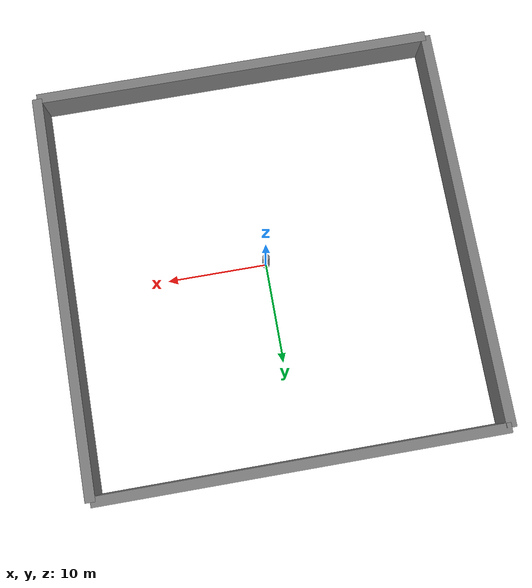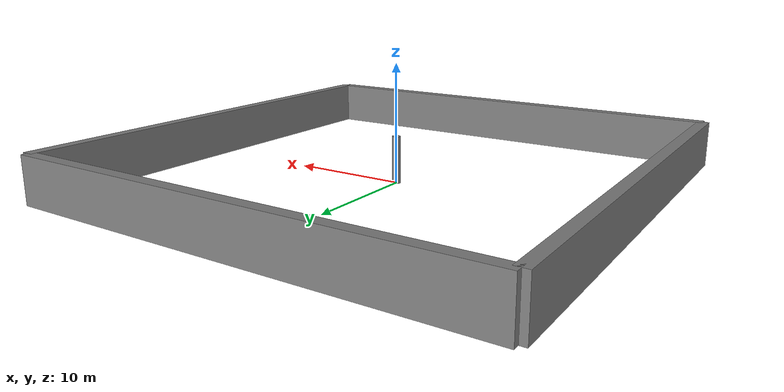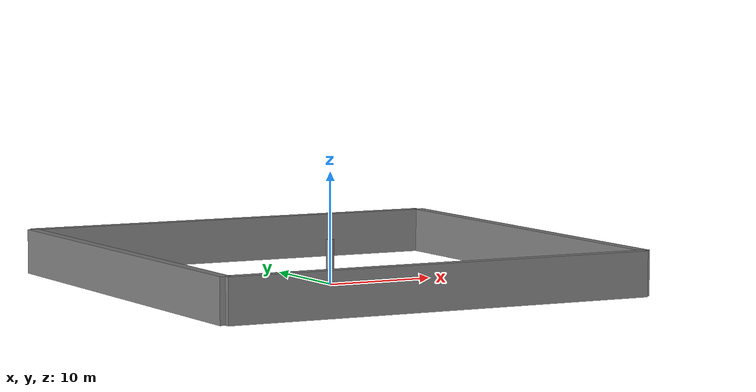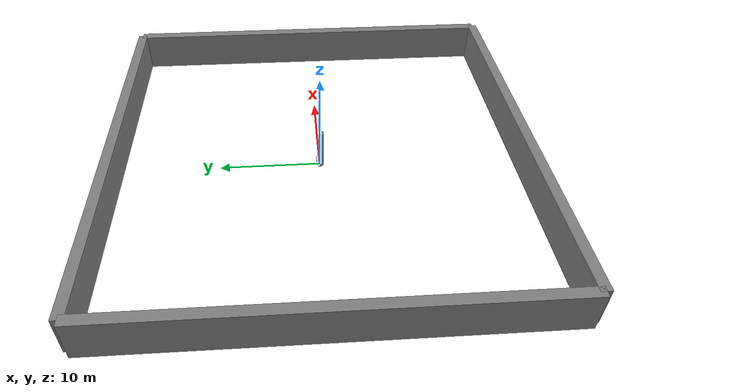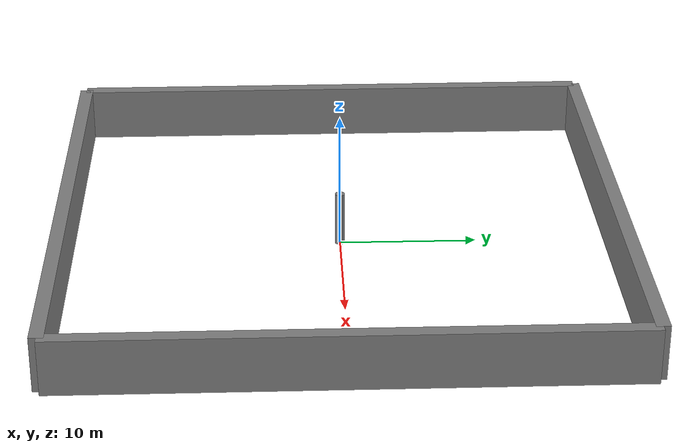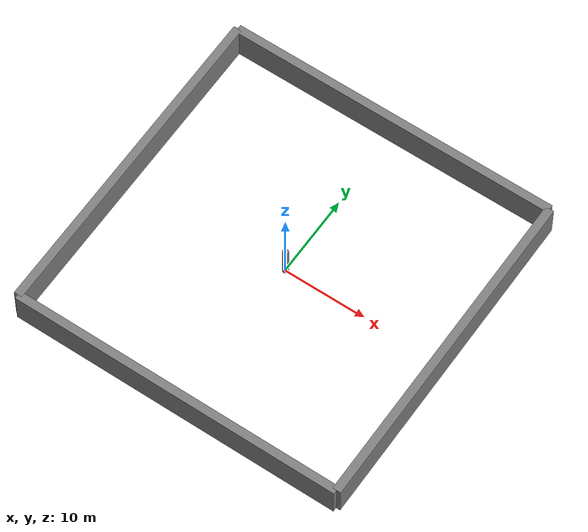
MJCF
<mujoco model="avoidance_arena">
  <worldbody>
    <!-- 4 walls -->
    <geom name="wall_east" type="box" size="0.5 20.0 2.0" pos="20.0 0.0 2.0"/>
    <geom name="wall_west" type="box" size="0.5 20.0 2.0" pos="-20.0 0.0 2.0"/>
    <geom name="wall_north" type="box" size="20.0 0.5 2.0" pos="0.0 20.0 2.0"/>
    <geom name="wall_south" type="box" size="20.0 0.5 2.0" pos="0.0 -20.0 2.0"/>
    <!-- 40 dynamic obstacles -->
    <geom name="obs_0" type="cylinder" size="0.35 2.0" pos="0.0 0.0 2.0"/>
    <geom name="obs_1" type="cylinder" size="0.35 2.0" pos="0.0 0.0 2.0"/>
    <geom name="obs_2" type="cylinder" size="0.35 2.0" pos="0.0 0.0 2.0"/>
    <geom name="obs_3" type="cylinder" size="0.35 2.0" pos="0.0 0.0 2.0"/>
    <geom name="obs_4" type="cylinder" size="0.35 2.0" pos="0.0 0.0 2.0"/>
    <geom name="obs_5" type="cylinder" size="0.35 2.0" pos="0.0 0.0 2.0"/>
    <geom name="obs_6" type="cylinder" size="0.35 2.0" pos="0.0 0.0 2.0"/>
    <geom name="obs_7" type="cylinder" size="0.35 2.0" pos="0.0 0.0 2.0"/>
    <geom name="obs_8" type="cylinder" size="0.35 2.0" pos="0.0 0.0 2.0"/>
    <geom name="obs_9" type="cylinder" size="0.35 2.0" pos="0.0 0.0 2.0"/>
    <geom name="obs_10" type="cylinder" size="0.35 2.0" pos="0.0 0.0 2.0"/>
    <geom name="obs_11" type="cylinder" size="0.35 2.0" pos="0.0 0.0 2.0"/>
    <geom name="obs_12" type="cylinder" size="0.35 2.0" pos="0.0 0.0 2.0"/>
    <geom name="obs_13" type="cylinder" size="0.35 2.0" pos="0.0 0.0 2.0"/>
    <geom name="obs_14" type="cylinder" size="0.35 2.0" pos="0.0 0.0 2.0"/>
    <geom name="obs_15" type="cylinder" size="0.35 2.0" pos="0.0 0.0 2.0"/>
    <geom name="obs_16" type="cylinder" size="0.35 2.0" pos="0.0 0.0 2.0"/>
    <geom name="obs_17" type="cylinder" size="0.35 2.0" pos="0.0 0.0 2.0"/>
    <geom name="obs_18" type="cylinder" size="0.35 2.0" pos="0.0 0.0 2.0"/>
    <geom name="obs_19" type="cylinder" size="0.35 2.0" pos="0.0 0.0 2.0"/>
    <geom name="obs_20" type="cylinder" size="0.35 2.0" pos="0.0 0.0 2.0"/>
    <geom name="obs_21" type="cylinder" size="0.35 2.0" pos="0.0 0.0 2.0"/>
    <geom name="obs_22" type="cylinder" size="0.35 2.0" pos="0.0 0.0 2.0"/>
    <geom name="obs_23" type="cylinder" size="0.35 2.0" pos="0.0 0.0 2.0"/>
    <geom name="obs_24" type="cylinder" size="0.35 2.0" pos="0.0 0.0 2.0"/>
    <geom name="obs_25" type="cylinder" size="0.35 2.0" pos="0.0 0.0 2.0"/>
    <geom name="obs_26" type="cylinder" size="0.35 2.0" pos="0.0 0.0 2.0"/>
    <geom name="obs_27" type="cylinder" size="0.35 2.0" pos="0.0 0.0 2.0"/>
    <geom name="obs_28" type="cylinder" size="0.35 2.0" pos="0.0 0.0 2.0"/>
    <geom name="obs_29" type="cylinder" size="0.35 2.0" pos="0.0 0.0 2.0"/>
    <geom name="obs_30" type="cylinder" size="0.35 2.0" pos="0.0 0.0 2.0"/>
    <geom name="obs_31" type="cylinder" size="0.35 2.0" pos="0.0 0.0 2.0"/>
    <geom name="obs_32" type="cylinder" size="0.35 2.0" pos="0.0 0.0 2.0"/>
    <geom name="obs_33" type="cylinder" size="0.35 2.0" pos="0.0 0.0 2.0"/>
    <geom name="obs_34" type="cylinder" size="0.35 2.0" pos="0.0 0.0 2.0"/>
    <geom name="obs_35" type="cylinder" size="0.35 2.0" pos="0.0 0.0 2.0"/>
    <geom name="obs_36" type="cylinder" size="0.35 2.0" pos="0.0 0.0 2.0"/>
    <geom name="obs_37" type="cylinder" size="0.35 2.0" pos="0.0 0.0 2.0"/>
    <geom name="obs_38" type="cylinder" size="0.35 2.0" pos="0.0 0.0 2.0"/>
    <geom name="obs_39" type="cylinder" size="0.35 2.0" pos="0.0 0.0 2.0"/>
  </worldbody>
</mujoco>
